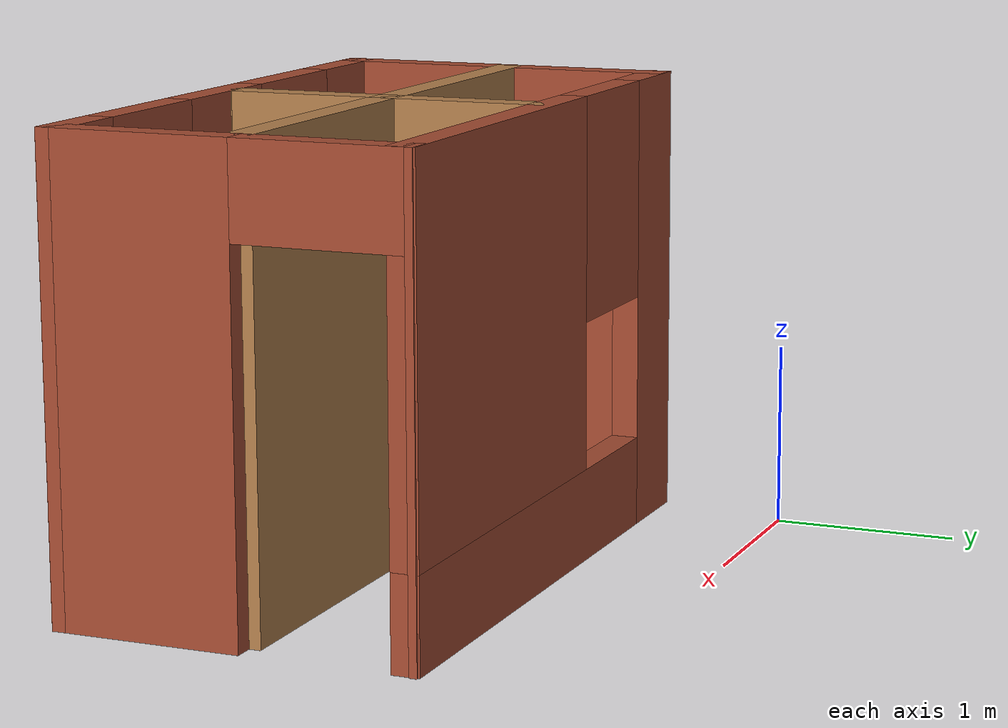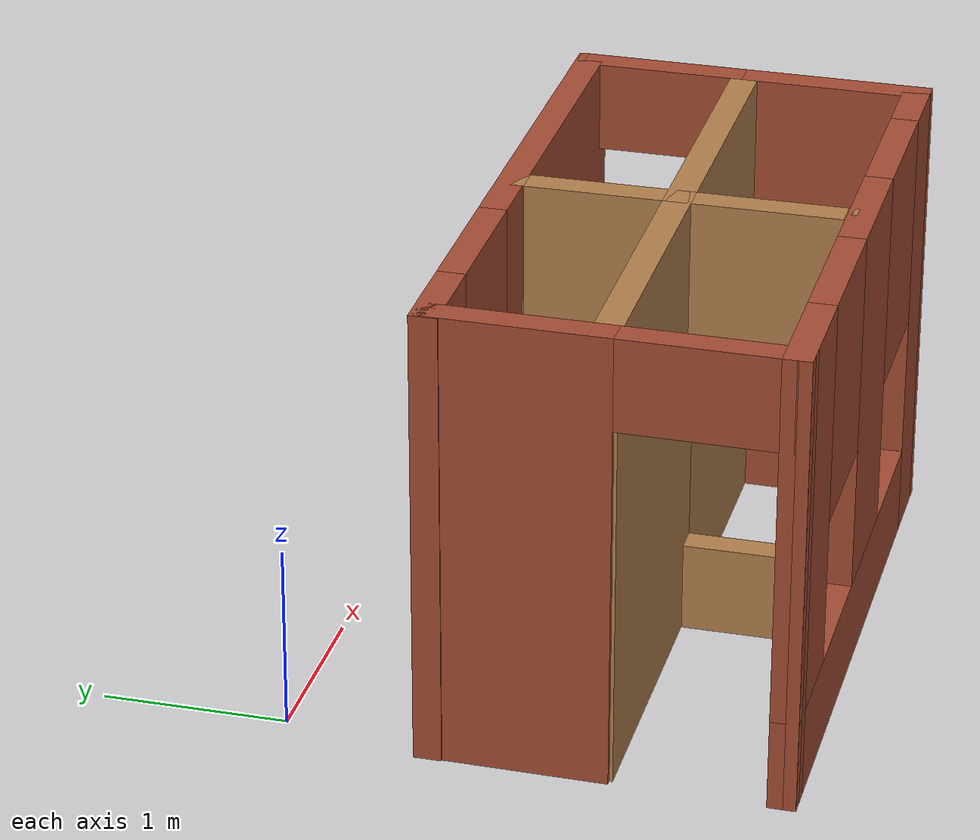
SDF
<?xml version='1.0'?>
<sdf version='1.7'>
  <model name='frist_enviroment'>
    <pose>1.585 -1.35791 0 0 -0 0</pose>
    <link name='Wall_0'>
      <pose>0 0.557908 0 0 -0 0</pose>
      <visual name='Wall_0_Visual_0'>
        <pose>-1.4875 0 1.25 0 -0 0</pose>
        <geometry>
          <box>
            <size>0.525 0.15 2.5</size>
          </box>
        </geometry>
        <material>
          <script>
            <uri>file://media/materials/scripts/gazebo.material</uri>
            <name>Gazebo/Bricks</name>
          </script>
          <ambient>1 1 1 1</ambient>
        </material>
        <meta>
          <layer>0</layer>
        </meta>
      </visual>
      <collision name='Wall_0_Collision_0'>
        <geometry>
          <box>
            <size>0.525 0.15 2.5</size>
          </box>
        </geometry>
        <pose>-1.4875 0 1.25 0 -0 0</pose>
      </collision>
      <visual name='Wall_0_Visual_1'>
        <pose>0.2625 0 0.25 0 -0 0</pose>
        <geometry>
          <box>
            <size>2.975 0.15 0.5</size>
          </box>
        </geometry>
        <material>
          <script>
            <uri>file://media/materials/scripts/gazebo.material</uri>
            <name>Gazebo/Bricks</name>
          </script>
          <ambient>1 1 1 1</ambient>
        </material>
        <meta>
          <layer>0</layer>
        </meta>
      </visual>
      <collision name='Wall_0_Collision_1'>
        <geometry>
          <box>
            <size>2.975 0.15 0.5</size>
          </box>
        </geometry>
        <pose>0.2625 0 0.25 0 -0 0</pose>
      </collision>
      <visual name='Wall_0_Visual_2'>
        <pose>0.6625 0 1.5 0 -0 0</pose>
        <geometry>
          <box>
            <size>2.175 0.15 2</size>
          </box>
        </geometry>
        <material>
          <script>
            <uri>file://media/materials/scripts/gazebo.material</uri>
            <name>Gazebo/Bricks</name>
          </script>
          <ambient>1 1 1 1</ambient>
        </material>
        <meta>
          <layer>0</layer>
        </meta>
      </visual>
      <collision name='Wall_0_Collision_2'>
        <geometry>
          <box>
            <size>2.175 0.15 2</size>
          </box>
        </geometry>
        <pose>0.6625 0 1.5 0 -0 0</pose>
      </collision>
      <visual name='Wall_0_Visual_3'>
        <pose>-0.825 0 1.9 0 -0 0</pose>
        <geometry>
          <box>
            <size>0.8 0.15 1.2</size>
          </box>
        </geometry>
        <material>
          <script>
            <uri>file://media/materials/scripts/gazebo.material</uri>
            <name>Gazebo/Bricks</name>
          </script>
          <ambient>1 1 1 1</ambient>
        </material>
        <meta>
          <layer>0</layer>
        </meta>
      </visual>
      <collision name='Wall_0_Collision_3'>
        <geometry>
          <box>
            <size>0.8 0.15 1.2</size>
          </box>
        </geometry>
        <pose>-0.825 0 1.9 0 -0 0</pose>
      </collision>
    </link>
    <link name='Wall_1'>
      <pose>1.675 -0.367092 0 0 -0 -1.58173</pose>
      <visual name='Wall_1_Visual_0'>
        <pose>-0.968387 0 1.25 0 -0 0</pose>
        <geometry>
          <box>
            <size>0.043336 0.15 2.5</size>
          </box>
        </geometry>
        <material>
          <script>
            <uri>file://media/materials/scripts/gazebo.material</uri>
            <name>Gazebo/Bricks</name>
          </script>
          <ambient>1 1 1 1</ambient>
        </material>
        <meta>
          <layer>0</layer>
        </meta>
      </visual>
      <collision name='Wall_1_Collision_0'>
        <geometry>
          <box>
            <size>0.043336 0.15 2.5</size>
          </box>
        </geometry>
        <pose>-0.968387 0 1.25 0 -0 0</pose>
      </collision>
      <visual name='Wall_1_Visual_1'>
        <pose>0.471668 0 1.25 0 -0 0</pose>
        <geometry>
          <box>
            <size>1.03677 0.15 2.5</size>
          </box>
        </geometry>
        <material>
          <script>
            <uri>file://media/materials/scripts/gazebo.material</uri>
            <name>Gazebo/Bricks</name>
          </script>
          <ambient>1 1 1 1</ambient>
        </material>
        <meta>
          <layer>0</layer>
        </meta>
      </visual>
      <collision name='Wall_1_Collision_1'>
        <geometry>
          <box>
            <size>1.03677 0.15 2.5</size>
          </box>
        </geometry>
        <pose>0.471668 0 1.25 0 -0 0</pose>
      </collision>
      <visual name='Wall_1_Visual_2'>
        <pose>-0.496719 0 2.25 0 -0 0</pose>
        <geometry>
          <box>
            <size>0.9 0.15 0.5</size>
          </box>
        </geometry>
        <material>
          <script>
            <uri>file://media/materials/scripts/gazebo.material</uri>
            <name>Gazebo/Bricks</name>
          </script>
          <ambient>1 1 1 1</ambient>
        </material>
        <meta>
          <layer>0</layer>
        </meta>
      </visual>
      <collision name='Wall_1_Collision_2'>
        <geometry>
          <box>
            <size>0.9 0.15 0.5</size>
          </box>
        </geometry>
        <pose>-0.496719 0 2.25 0 -0 0</pose>
      </collision>
    </link>
    <link name='Wall_2'>
      <pose>-0.01 -1.28209 0 0 -0 3.14159</pose>
      <visual name='Wall_2_Visual_0'>
        <pose>-1.5125 0 1.25 0 -0 0</pose>
        <geometry>
          <box>
            <size>0.475 0.15 2.5</size>
          </box>
        </geometry>
        <material>
          <script>
            <uri>file://media/materials/scripts/gazebo.material</uri>
            <name>Gazebo/Bricks</name>
          </script>
          <ambient>1 1 1 1</ambient>
        </material>
        <meta>
          <layer>0</layer>
        </meta>
      </visual>
      <collision name='Wall_2_Collision_0'>
        <geometry>
          <box>
            <size>0.475 0.15 2.5</size>
          </box>
        </geometry>
        <pose>-1.5125 0 1.25 0 -0 0</pose>
      </collision>
      <visual name='Wall_2_Visual_1'>
        <pose>0.2375 0 0.25 0 -0 0</pose>
        <geometry>
          <box>
            <size>3.025 0.15 0.5</size>
          </box>
        </geometry>
        <material>
          <script>
            <uri>file://media/materials/scripts/gazebo.material</uri>
            <name>Gazebo/Bricks</name>
          </script>
          <ambient>1 1 1 1</ambient>
        </material>
        <meta>
          <layer>0</layer>
        </meta>
      </visual>
      <collision name='Wall_2_Collision_1'>
        <geometry>
          <box>
            <size>3.025 0.15 0.5</size>
          </box>
        </geometry>
        <pose>0.2375 0 0.25 0 -0 0</pose>
      </collision>
      <visual name='Wall_2_Visual_2'>
        <pose>-0.085 0 1.5 0 -0 0</pose>
        <geometry>
          <box>
            <size>0.78 0.15 2</size>
          </box>
        </geometry>
        <material>
          <script>
            <uri>file://media/materials/scripts/gazebo.material</uri>
            <name>Gazebo/Bricks</name>
          </script>
          <ambient>1 1 1 1</ambient>
        </material>
        <meta>
          <layer>0</layer>
        </meta>
      </visual>
      <collision name='Wall_2_Collision_2'>
        <geometry>
          <box>
            <size>0.78 0.15 2</size>
          </box>
        </geometry>
        <pose>-0.085 0 1.5 0 -0 0</pose>
      </collision>
      <visual name='Wall_2_Visual_3'>
        <pose>1.4275 0 1.5 0 -0 0</pose>
        <geometry>
          <box>
            <size>0.645 0.15 2</size>
          </box>
        </geometry>
        <material>
          <script>
            <uri>file://media/materials/scripts/gazebo.material</uri>
            <name>Gazebo/Bricks</name>
          </script>
          <ambient>1 1 1 1</ambient>
        </material>
        <meta>
          <layer>0</layer>
        </meta>
      </visual>
      <collision name='Wall_2_Collision_3'>
        <geometry>
          <box>
            <size>0.645 0.15 2</size>
          </box>
        </geometry>
        <pose>1.4275 0 1.5 0 -0 0</pose>
      </collision>
      <visual name='Wall_2_Visual_4'>
        <pose>-0.875 0 1.9 0 -0 0</pose>
        <geometry>
          <box>
            <size>0.8 0.15 1.2</size>
          </box>
        </geometry>
        <material>
          <script>
            <uri>file://media/materials/scripts/gazebo.material</uri>
            <name>Gazebo/Bricks</name>
          </script>
          <ambient>1 1 1 1</ambient>
        </material>
        <meta>
          <layer>0</layer>
        </meta>
      </visual>
      <collision name='Wall_2_Collision_4'>
        <geometry>
          <box>
            <size>0.8 0.15 1.2</size>
          </box>
        </geometry>
        <pose>-0.875 0 1.9 0 -0 0</pose>
      </collision>
      <visual name='Wall_2_Visual_5'>
        <pose>0.705 0 1.9 0 -0 0</pose>
        <geometry>
          <box>
            <size>0.8 0.15 1.2</size>
          </box>
        </geometry>
        <material>
          <script>
            <uri>file://media/materials/scripts/gazebo.material</uri>
            <name>Gazebo/Bricks</name>
          </script>
          <ambient>1 1 1 1</ambient>
        </material>
        <meta>
          <layer>0</layer>
        </meta>
      </visual>
      <collision name='Wall_2_Collision_5'>
        <geometry>
          <box>
            <size>0.8 0.15 1.2</size>
          </box>
        </geometry>
        <pose>0.705 0 1.9 0 -0 0</pose>
      </collision>
    </link>
    <link name='Wall_3'>
      <pose>-1.675 -0.367092 0 0 -0 1.55987</pose>
      <visual name='Wall_3_Visual_0'>
        <pose>-0.956366 0 1.25 0 -0 0</pose>
        <geometry>
          <box>
            <size>0.067378 0.15 2.5</size>
          </box>
        </geometry>
        <material>
          <script>
            <uri>file://media/materials/scripts/gazebo.material</uri>
            <name>Gazebo/Bricks</name>
          </script>
          <ambient>1 1 1 1</ambient>
        </material>
        <meta>
          <layer>0</layer>
        </meta>
      </visual>
      <collision name='Wall_3_Collision_0'>
        <geometry>
          <box>
            <size>0.067378 0.15 2.5</size>
          </box>
        </geometry>
        <pose>-0.956366 0 1.25 0 -0 0</pose>
      </collision>
      <visual name='Wall_3_Visual_1'>
        <pose>0.483689 0 1.25 0 -0 0</pose>
        <geometry>
          <box>
            <size>1.01273 0.15 2.5</size>
          </box>
        </geometry>
        <material>
          <script>
            <uri>file://media/materials/scripts/gazebo.material</uri>
            <name>Gazebo/Bricks</name>
          </script>
          <ambient>1 1 1 1</ambient>
        </material>
        <meta>
          <layer>0</layer>
        </meta>
      </visual>
      <collision name='Wall_3_Collision_1'>
        <geometry>
          <box>
            <size>1.01273 0.15 2.5</size>
          </box>
        </geometry>
        <pose>0.483689 0 1.25 0 -0 0</pose>
      </collision>
      <visual name='Wall_3_Visual_2'>
        <pose>-0.472677 0 2.25 0 -0 0</pose>
        <geometry>
          <box>
            <size>0.9 0.15 0.5</size>
          </box>
        </geometry>
        <material>
          <script>
            <uri>file://media/materials/scripts/gazebo.material</uri>
            <name>Gazebo/Bricks</name>
          </script>
          <ambient>1 1 1 1</ambient>
        </material>
        <meta>
          <layer>0</layer>
        </meta>
      </visual>
      <collision name='Wall_3_Collision_2'>
        <geometry>
          <box>
            <size>0.9 0.15 0.5</size>
          </box>
        </geometry>
        <pose>-0.472677 0 2.25 0 -0 0</pose>
      </collision>
    </link>
    <link name='Wall_5'>
      <pose>-0.035 0.092908 0 0 -0 -1.5708</pose>
      <visual name='Wall_5_Visual_0'>
        <pose>-0.4425 0 1.25 0 -0 0</pose>
        <geometry>
          <box>
            <size>0.115 0.15 2.5</size>
          </box>
        </geometry>
        <material>
          <script>
            <uri>file://media/materials/scripts/gazebo.material</uri>
            <name>Gazebo/Wood</name>
          </script>
          <ambient>1 1 1 1</ambient>
        </material>
        <meta>
          <layer>0</layer>
        </meta>
      </visual>
      <collision name='Wall_5_Collision_0'>
        <geometry>
          <box>
            <size>0.115 0.15 2.5</size>
          </box>
        </geometry>
        <pose>-0.4425 0 1.25 0 -0 0</pose>
      </collision>
      <visual name='Wall_5_Visual_1'>
        <pose>0.0575 0 0.25 0 -0 0</pose>
        <geometry>
          <box>
            <size>0.885 0.15 0.5</size>
          </box>
        </geometry>
        <material>
          <script>
            <uri>file://media/materials/scripts/gazebo.material</uri>
            <name>Gazebo/Wood</name>
          </script>
          <ambient>1 1 1 1</ambient>
        </material>
        <meta>
          <layer>0</layer>
        </meta>
      </visual>
      <collision name='Wall_5_Collision_1'>
        <geometry>
          <box>
            <size>0.885 0.15 0.5</size>
          </box>
        </geometry>
        <pose>0.0575 0 0.25 0 -0 0</pose>
      </collision>
      <visual name='Wall_5_Visual_2'>
        <pose>0.4575 0 1.5 0 -0 0</pose>
        <geometry>
          <box>
            <size>0.085 0.15 2</size>
          </box>
        </geometry>
        <material>
          <script>
            <uri>file://media/materials/scripts/gazebo.material</uri>
            <name>Gazebo/Wood</name>
          </script>
          <ambient>1 1 1 1</ambient>
        </material>
        <meta>
          <layer>0</layer>
        </meta>
      </visual>
      <collision name='Wall_5_Collision_2'>
        <geometry>
          <box>
            <size>0.085 0.15 2</size>
          </box>
        </geometry>
        <pose>0.4575 0 1.5 0 -0 0</pose>
      </collision>
      <visual name='Wall_5_Visual_3'>
        <pose>0.015 0 1.9 0 -0 0</pose>
        <geometry>
          <box>
            <size>0.8 0.15 1.2</size>
          </box>
        </geometry>
        <material>
          <script>
            <uri>file://media/materials/scripts/gazebo.material</uri>
            <name>Gazebo/Wood</name>
          </script>
          <ambient>1 1 1 1</ambient>
        </material>
        <meta>
          <layer>0</layer>
        </meta>
      </visual>
      <collision name='Wall_5_Collision_3'>
        <geometry>
          <box>
            <size>0.8 0.15 1.2</size>
          </box>
        </geometry>
        <pose>0.015 0 1.9 0 -0 0</pose>
      </collision>
    </link>
    <link name='Wall_6'>
      <collision name='Wall_6_Collision'>
        <geometry>
          <box>
            <size>1.75 0.15 2.5</size>
          </box>
        </geometry>
        <pose>0 0 1.25 0 -0 0</pose>
      </collision>
      <visual name='Wall_6_Visual'>
        <pose>0 0 1.25 0 -0 0</pose>
        <geometry>
          <box>
            <size>1.75 0.15 2.5</size>
          </box>
        </geometry>
        <material>
          <script>
            <uri>file://media/materials/scripts/gazebo.material</uri>
            <name>Gazebo/Wood</name>
          </script>
          <ambient>1 1 1 1</ambient>
        </material>
        <meta>
          <layer>0</layer>
        </meta>
      </visual>
      <pose>0.765 -0.332093 0 0 -0 0</pose>
    </link>
    <link name='Wall_8'>
      <collision name='Wall_8_Collision'>
        <geometry>
          <box>
            <size>1.76 0.15 2.5</size>
          </box>
        </geometry>
        <pose>0 0 1.25 0 -0 0</pose>
      </collision>
      <visual name='Wall_8_Visual'>
        <pose>0 0 1.25 0 -0 0</pose>
        <geometry>
          <box>
            <size>1.76 0.15 2.5</size>
          </box>
        </geometry>
        <material>
          <script>
            <uri>file://media/materials/scripts/gazebo.material</uri>
            <name>Gazebo/Wood</name>
          </script>
          <ambient>1 1 1 1</ambient>
        </material>
        <meta>
          <layer>0</layer>
        </meta>
      </visual>
      <pose>-0.84 -0.332093 0 0 -0 0</pose>
    </link>
    <link name='Wall_9'>
      <pose>-0.035 -0.757092 0 0 -0 -1.5708</pose>
      <visual name='Wall_9_Visual_0'>
        <pose>-0.4275 0 1.25 0 -0 0</pose>
        <geometry>
          <box>
            <size>0.145 0.15 2.5</size>
          </box>
        </geometry>
        <material>
          <script>
            <uri>file://media/materials/scripts/gazebo.material</uri>
            <name>Gazebo/Wood</name>
          </script>
          <ambient>1 1 1 1</ambient>
        </material>
        <meta>
          <layer>0</layer>
        </meta>
      </visual>
      <collision name='Wall_9_Collision_0'>
        <geometry>
          <box>
            <size>0.145 0.15 2.5</size>
          </box>
        </geometry>
        <pose>-0.4275 0 1.25 0 -0 0</pose>
      </collision>
      <visual name='Wall_9_Visual_1'>
        <pose>0.0725 0 0.25 0 -0 0</pose>
        <geometry>
          <box>
            <size>0.855 0.15 0.5</size>
          </box>
        </geometry>
        <material>
          <script>
            <uri>file://media/materials/scripts/gazebo.material</uri>
            <name>Gazebo/Wood</name>
          </script>
          <ambient>1 1 1 1</ambient>
        </material>
        <meta>
          <layer>0</layer>
        </meta>
      </visual>
      <collision name='Wall_9_Collision_1'>
        <geometry>
          <box>
            <size>0.855 0.15 0.5</size>
          </box>
        </geometry>
        <pose>0.0725 0 0.25 0 -0 0</pose>
      </collision>
      <visual name='Wall_9_Visual_2'>
        <pose>0.4725 0 1.5 0 -0 0</pose>
        <geometry>
          <box>
            <size>0.055 0.15 2</size>
          </box>
        </geometry>
        <material>
          <script>
            <uri>file://media/materials/scripts/gazebo.material</uri>
            <name>Gazebo/Wood</name>
          </script>
          <ambient>1 1 1 1</ambient>
        </material>
        <meta>
          <layer>0</layer>
        </meta>
      </visual>
      <collision name='Wall_9_Collision_2'>
        <geometry>
          <box>
            <size>0.055 0.15 2</size>
          </box>
        </geometry>
        <pose>0.4725 0 1.5 0 -0 0</pose>
      </collision>
      <visual name='Wall_9_Visual_3'>
        <pose>0.045 0 1.9 0 -0 0</pose>
        <geometry>
          <box>
            <size>0.8 0.15 1.2</size>
          </box>
        </geometry>
        <material>
          <script>
            <uri>file://media/materials/scripts/gazebo.material</uri>
            <name>Gazebo/Wood</name>
          </script>
          <ambient>1 1 1 1</ambient>
        </material>
        <meta>
          <layer>0</layer>
        </meta>
      </visual>
      <collision name='Wall_9_Collision_3'>
        <geometry>
          <box>
            <size>0.8 0.15 1.2</size>
          </box>
        </geometry>
        <pose>0.045 0 1.9 0 -0 0</pose>
      </collision>
    </link>
    <static>1</static>
  </model>
</sdf>
